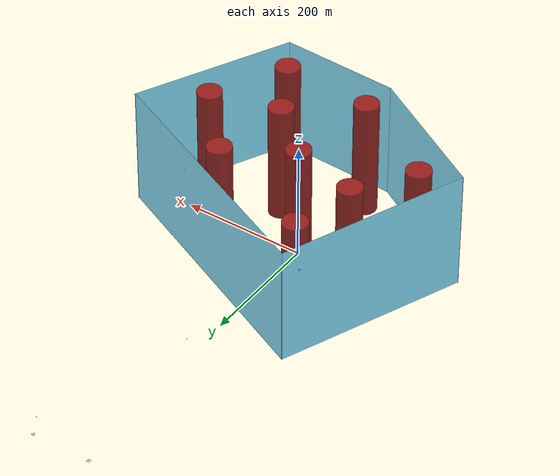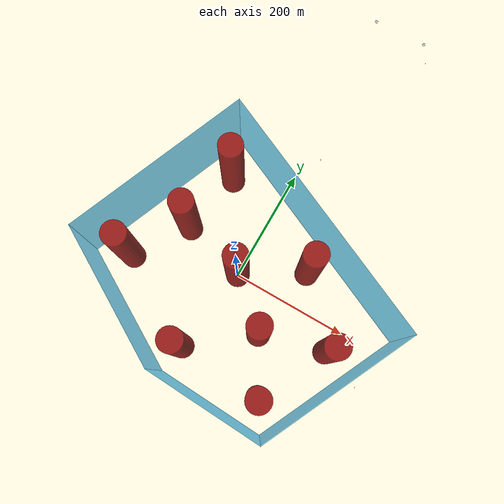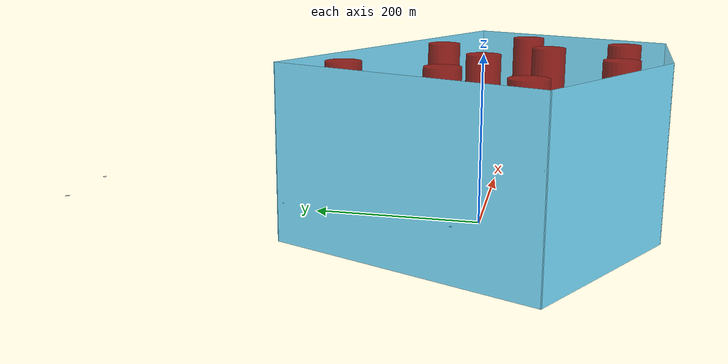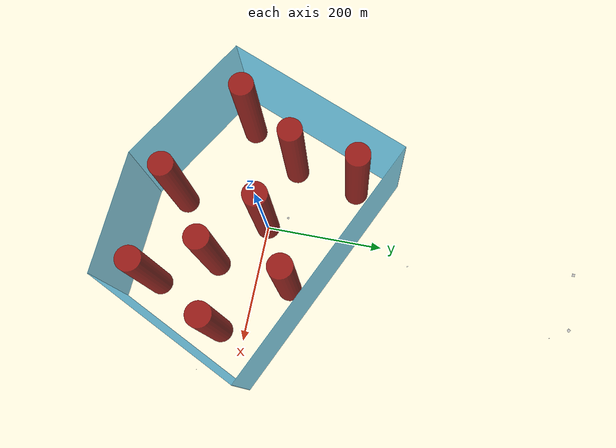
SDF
<sdf version="1.7">
 <world name="runway">
  <physics name="1ms" type="ignore">
   <max_step_size>0.001</max_step_size>
   <real_time_factor>1</real_time_factor>
  </physics>
  <plugin filename="gz-sim-physics-system" name="gz::sim::systems::Physics"/>
  <plugin filename="gz-sim-user-commands-system" name="gz::sim::systems::UserCommands"/>
  <plugin filename="gz-sim-scene-broadcaster-system" name="gz::sim::systems::SceneBroadcaster"/>
  <plugin filename="gz-sim-imu-system" name="gz::sim::systems::Imu"/>
  <plugin filename="gz-sim-navsat-system" name="gz::sim::systems::NavSat"/>
  <plugin filename="gz-sim-sensors-system" name="gz::sim::systems::Sensors">
   <render_engine>ogre2</render_engine>
  </plugin>
  <scene><ambient>1.0 1.0 1.0</ambient><background>0.8 0.8 0.8</background></scene>
  <spherical_coordinates>
   <latitude_deg>37.98129904</latitude_deg>
   <longitude_deg>41.83968937</longitude_deg>
   <elevation>0</elevation>
   <heading_deg>0</heading_deg>
   <surface_model>EARTH_WGS84</surface_model>
  </spherical_coordinates>
  <light type="directional" name="sun">
   <pose>0 0 10 0 0 0</pose>
   <diffuse>0.8 0.8 0.8 1</diffuse>
   <specular>0.8 0.8 0.8 1</specular>
   <attenuation>
    <range>1000</range>
    <constant>0.9</constant>
    <linear>0.01</linear>
    <quadratic>0.001</quadratic>
   </attenuation>
   <direction>-0.5 0.1 -0.9</direction>
  </light>
  <model name="axes">
   <static>1</static>
   <link name="link">
    <visual name="r">
     <cast_shadows>0</cast_shadows>
     <pose>5 0 0.1 0 0 0</pose>
     <geometry><box><size>10 0.01 0.01</size></box></geometry>
     <material>
      <ambient>1 0 0 1</ambient>
      <diffuse>1 0 0 1</diffuse>
      <emissive>1 0 0 1</emissive>
      <specular>0.5 0.5 0.5 1</specular>
     </material>
    </visual>
    <visual name="g">
     <cast_shadows>0</cast_shadows>
     <pose>0 5 0.1 0 0 0</pose>
     <geometry><box><size>0.01 10 0.01</size></box></geometry>
     <material>
      <ambient>0 1 0 1</ambient>
      <diffuse>0 1 0 1</diffuse>
      <emissive>0 1 0 1</emissive>
      <specular>0.5 0.5 0.5 1</specular>
     </material>
    </visual>
    <visual name="b">
     <cast_shadows>0</cast_shadows>
     <pose>0 0 5.1 0 0 0</pose>
     <geometry><box><size>0.01 0.01 10</size></box></geometry>
     <material>
      <ambient>0 0 1 1</ambient>
      <diffuse>0 0 1 1</diffuse>
      <emissive>0 0 1 1</emissive>
      <specular>0.5 0.5 0.5 1</specular>
     </material>
    </visual>
   </link>
  </model>
  <include><uri>model://qr_code</uri><pose>100 507 0.01 0 0 0</pose></include>
  <include><uri>model://qr_code3</uri><pose>80 535 0.01 0 0 0</pose></include>
  <include><uri>model://qr_code4</uri><pose>-25 30 0.01 0 0 0</pose></include>
  <include><uri>model://qr_code5</uri><pose>-17 535 0.01 0 0 0</pose></include>
  <model name="noflyzone_1">
   <static>true</static>
   <link name="link">
    <visual name="visual">
     <cast_shadows>false</cast_shadows>
     <geometry><cylinder><radius>20.0</radius><length>200.0</length></cylinder></geometry>
     <material>
      <ambient>0.35 0 0 0.85</ambient>
      <diffuse>0.55 0 0 0.85</diffuse>
      <specular>0.05 0 0 0.85</specular>
     </material>
    </visual>
   </link>
   <pose>0.000 0.000 100 0 0 0</pose>
  </model>
  <model name="noflyzone_2">
   <static>true</static>
   <link name="link">
    <visual name="visual">
     <cast_shadows>false</cast_shadows>
     <geometry><cylinder><radius>20.0</radius><length>200.0</length></cylinder></geometry>
     <material>
      <ambient>0.35 0 0 0.85</ambient>
      <diffuse>0.55 0 0 0.85</diffuse>
      <specular>0.05 0 0 0.85</specular>
     </material>
    </visual>
   </link>
   <pose>130.334 -159.988 100 0 0 0</pose>
  </model>
  <model name="noflyzone_3">
   <static>true</static>
   <link name="link">
    <visual name="visual">
     <cast_shadows>false</cast_shadows>
     <geometry><cylinder><radius>20.0</radius><length>200.0</length></cylinder></geometry>
     <material>
      <ambient>0.35 0 0 0.85</ambient>
      <diffuse>0.55 0 0 0.85</diffuse>
      <specular>0.05 0 0 0.85</specular>
     </material>
    </visual>
   </link>
   <pose>-170.430 -59.996 100 0 0 0</pose>
  </model>
  <model name="noflyzone_4">
   <static>true</static>
   <link name="link">
    <visual name="visual">
     <cast_shadows>false</cast_shadows>
     <geometry><cylinder><radius>20.0</radius><length>200.0</length></cylinder></geometry>
     <material>
      <ambient>0.35 0 0 0.85</ambient>
      <diffuse>0.55 0 0 0.85</diffuse>
      <specular>0.05 0 0 0.85</specular>
     </material>
    </visual>
   </link>
   <pose>-90.228 139.991 100 0 0 0</pose>
  </model>
  <model name="noflyzone_5">
   <static>true</static>
   <link name="link">
    <visual name="visual">
     <cast_shadows>false</cast_shadows>
     <geometry><cylinder><radius>20.0</radius><length>200.0</length></cylinder></geometry>
     <material>
      <ambient>0.35 0 0 0.85</ambient>
      <diffuse>0.55 0 0 0.85</diffuse>
      <specular>0.05 0 0 0.85</specular>
     </material>
    </visual>
   </link>
   <pose>-20.050 -149.990 100 0 0 0</pose>
  </model>
  <model name="noflyzone_6">
   <static>true</static>
   <link name="link">
    <visual name="visual">
     <cast_shadows>false</cast_shadows>
     <geometry><cylinder><radius>20.0</radius><length>200.0</length></cylinder></geometry>
     <material>
      <ambient>0.35 0 0 0.85</ambient>
      <diffuse>0.55 0 0 0.85</diffuse>
      <specular>0.05 0 0 0.85</specular>
     </material>
    </visual>
   </link>
   <pose>190.478 -39.997 100 0 0 0</pose>
  </model>
  <model name="noflyzone_7">
   <static>true</static>
   <link name="link">
    <visual name="visual">
     <cast_shadows>false</cast_shadows>
     <geometry><cylinder><radius>20.0</radius><length>200.0</length></cylinder></geometry>
     <material>
      <ambient>0.35 0 0 0.85</ambient>
      <diffuse>0.55 0 0 0.85</diffuse>
      <specular>0.05 0 0 0.85</specular>
     </material>
    </visual>
   </link>
   <pose>100.252 60.000 100 0 0 0</pose>
  </model>
  <model name="noflyzone_8">
   <static>true</static>
   <link name="link">
    <visual name="visual">
     <cast_shadows>false</cast_shadows>
     <geometry><cylinder><radius>20.0</radius><length>200.0</length></cylinder></geometry>
     <material>
      <ambient>0.35 0 0 0.85</ambient>
      <diffuse>0.55 0 0 0.85</diffuse>
      <specular>0.05 0 0 0.85</specular>
     </material>
    </visual>
   </link>
   <pose>-110.285 29.998 100 0 0 0</pose>
  </model>
  <model name="noflyzone_9">
   <static>true</static>
   <link name="link">
    <visual name="visual">
     <cast_shadows>false</cast_shadows>
     <geometry><cylinder><radius>20.0</radius><length>200.0</length></cylinder></geometry>
     <material>
      <ambient>0.35 0 0 0.85</ambient>
      <diffuse>0.55 0 0 0.85</diffuse>
      <specular>0.05 0 0 0.85</specular>
     </material>
    </visual>
   </link>
   <pose>80.201 -69.995 100 0 0 0</pose>
  </model>
  <model name="outer_fence_edge_1">
   <static>true</static>
   <link name="link">
    <visual name="visual">
     <cast_shadows>false</cast_shadows>
     <geometry><box><size>433.0 0.5 200.0</size></box></geometry>
     <material>
      <ambient>0.0 0.5 1.0 0.6</ambient>
      <diffuse>0.0 0.7 1.0 0.6</diffuse>
      <specular>0.1 0.1 0.1 0.6</specular>
     </material>
    </visual>
   </link>
   <pose>81.096 119.184 100 0 0 -0.4285</pose>
  </model>
  <model name="outer_fence_edge_2">
   <static>true</static>
   <link name="link">
    <visual name="visual">
     <cast_shadows>false</cast_shadows>
     <geometry><box><size>268.0 0.5 200.0</size></box></geometry>
     <material>
      <ambient>0.0 0.5 1.0 0.6</ambient>
      <diffuse>0.0 0.7 1.0 0.6</diffuse>
      <specular>0.1 0.1 0.1 0.6</specular>
     </material>
    </visual>
   </link>
   <pose>220.061 -90.707 100 0 0 -2.0169</pose>
  </model>
  <model name="outer_fence_edge_3">
   <static>true</static>
   <link name="link">
    <visual name="visual">
     <cast_shadows>false</cast_shadows>
     <geometry><box><size>193.0 0.5 200.0</size></box></geometry>
     <material>
      <ambient>0.0 0.5 1.0 0.6</ambient>
      <diffuse>0.0 0.7 1.0 0.6</diffuse>
      <specular>0.1 0.1 0.1 0.6</specular>
     </material>
    </visual>
   </link>
   <pose>66.998 -206.219 100 0 0 3.0926</pose>
  </model>
  <model name="outer_fence_edge_4">
   <static>true</static>
   <link name="link">
    <visual name="visual">
     <cast_shadows>false</cast_shadows>
     <geometry><box><size>238.0 0.5 200.0</size></box></geometry>
     <material>
      <ambient>0.0 0.5 1.0 0.6</ambient>
      <diffuse>0.0 0.7 1.0 0.6</diffuse>
      <specular>0.1 0.1 0.1 0.6</specular>
     </material>
    </visual>
   </link>
   <pose>-130.632 -141.720 100 0 0 2.6110</pose>
  </model>
  <model name="outer_fence_edge_5">
   <static>true</static>
   <link name="link">
    <visual name="visual">
     <cast_shadows>false</cast_shadows>
     <geometry><box><size>315.0 0.5 200.0</size></box></geometry>
     <material>
      <ambient>0.0 0.5 1.0 0.6</ambient>
      <diffuse>0.0 0.7 1.0 0.6</diffuse>
      <specular>0.1 0.1 0.1 0.6</specular>
     </material>
    </visual>
   </link>
   <pose>-174.007 63.480 100 0 0 1.1873</pose>
  </model>
  <model name="qr_target_plate">
   <static>true</static>
   <pose>23.21 251.22 0.01 0 0 0</pose>
   <link name="link">
    <visual name="visual">
     <geometry><box><size>2 2 0.05</size></box></geometry>
     <material><ambient>1 1 1 1</ambient><diffuse>1 1 1 1</diffuse></material>
    </visual>
   </link>
  </model>
  <include><uri>model://qr_code</uri><name>kamikaze_qr</name><pose>261.614 -65.847 0.01 0 0 0</pose></include>
 </world>
</sdf>

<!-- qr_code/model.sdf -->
<sdf version="1.6">
  <model name="qr_code">
    <static>true</static>
    <link name="link">
      <visual name="visual">
        <geometry>
          <mesh>
            <uri>model://qr_code/meshes/qr_code.dae</uri>
            <scale>2.5 2.5 1</scale>
          </mesh>
        </geometry>
      </visual>
    </link>
  </model>
</sdf>

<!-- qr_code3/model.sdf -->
<sdf version="1.6">
  <model name="qr_code3">
    <static>true</static>
    <link name="link">
      <visual name="visual">
        <geometry>
          <mesh>
            <uri>model://qr_code3/meshes/qr_code.dae</uri>
            <scale>2.5 2.5 1</scale>
          </mesh>
        </geometry>
      </visual>
    </link>
  </model>
</sdf>

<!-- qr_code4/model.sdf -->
<sdf version="1.6">
  <model name="qr_code4">
    <static>true</static>
    <link name="link">
      <visual name="visual">
        <geometry>
          <mesh>
            <uri>model://qr_code4/meshes/qr_code.dae</uri>
            <scale>2.5 2.5 1</scale>
          </mesh>
        </geometry>
      </visual>
    </link>
  </model>
</sdf>

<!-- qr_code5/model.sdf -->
<sdf version="1.6">
  <model name="qr_code5">
    <static>true</static>
    <link name="link">
      <visual name="visual">
        <geometry>
          <mesh>
            <uri>model://qr_code5/meshes/qr_code.dae</uri>
            <scale>2.5 2.5 1</scale>
          </mesh>
        </geometry>
      </visual>
    </link>
  </model>
</sdf>
